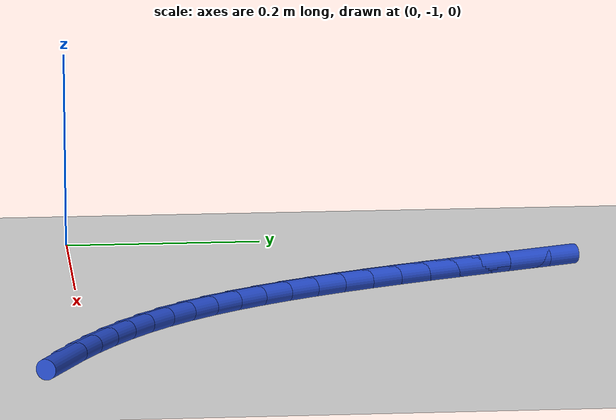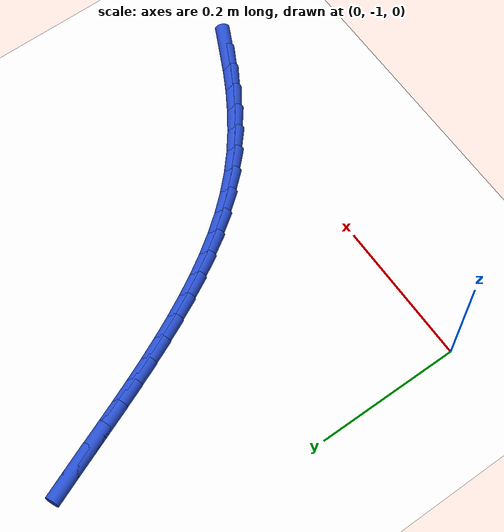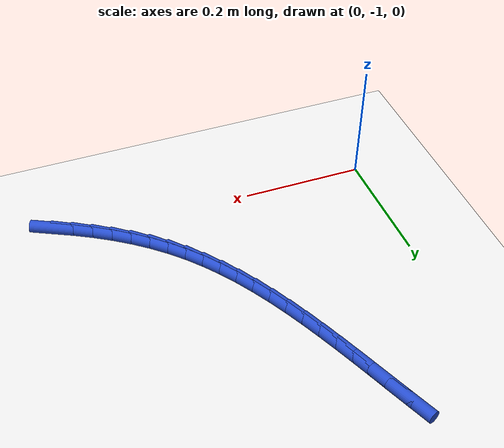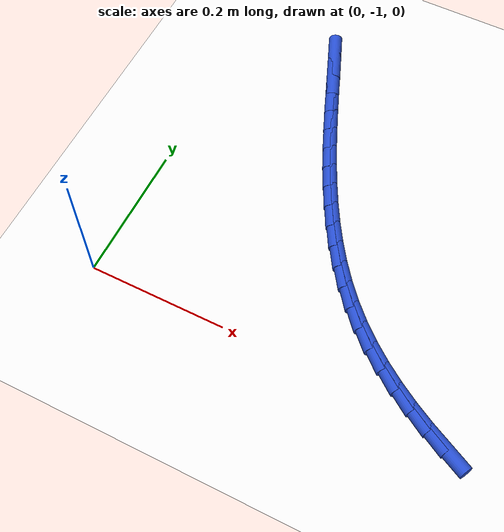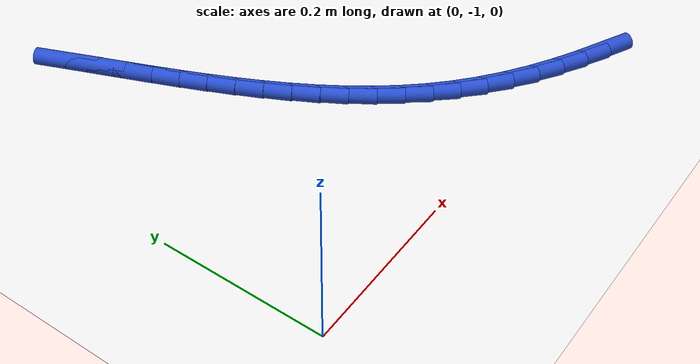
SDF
<sdf version="1.6">
 <world name="default">
  <model name="ground_plane">
   <static>1</static>
   <link name="link">
    <collision name="collision">
     <geometry><plane><normal>0 0 1</normal><size>100 100</size></plane></geometry>
     <surface><friction><ode><mu>100</mu><mu2>50</mu2></ode></friction></surface>
    </collision>
    <visual name="visual">
     <cast_shadows>0</cast_shadows>
     <geometry><plane><normal>0 0 1</normal><size>100 100</size></plane></geometry>
     <material>
      <script><uri>file://media/materials/scripts/gazebo.material</uri><name>Gazebo/WhiteGlow</name></script>
     </material>
    </visual>
   </link>
  </model>
  <model name="line">
   <link name="link_213">
    <pose>0.5237290622051641 -1.0254543604783708 0.01 0 1.57 -0.4606729219788516</pose>
    <collision name="collision">
     <geometry><cylinder><radius>0.01</radius><length>0.08</length></cylinder></geometry>
    </collision>
    <visual name="visual">
     <material>
      <script><name>Gazebo/Blue</name><uri>file://media/materials/scripts/gazebo.material</uri></script>
     </material>
     <geometry><cylinder><radius>0.01</radius><length>0.08</length></cylinder></geometry>
    </visual>
   </link>
   <link name="link_214">
    <pose>0.4943147947858749 -1.0108564374564857 0.01 0 1.57 -0.5050265197571286</pose>
    <collision name="collision">
     <geometry><cylinder><radius>0.01</radius><length>0.08</length></cylinder></geometry>
    </collision>
    <visual name="visual">
     <material>
      <script><name>Gazebo/Blue</name><uri>file://media/materials/scripts/gazebo.material</uri></script>
     </material>
     <geometry><cylinder><radius>0.01</radius><length>0.08</length></cylinder></geometry>
    </visual>
   </link>
   <link name="link_215">
    <pose>0.4657331063509196 -0.9950551315133118 0.01 0 1.57 -0.5533039846192933</pose>
    <collision name="collision">
     <geometry><cylinder><radius>0.01</radius><length>0.08</length></cylinder></geometry>
    </collision>
    <visual name="visual">
     <material>
      <script><name>Gazebo/Blue</name><uri>file://media/materials/scripts/gazebo.material</uri></script>
     </material>
     <geometry><cylinder><radius>0.01</radius><length>0.08</length></cylinder></geometry>
    </visual>
   </link>
   <link name="link_216">
    <pose>0.4381327157089801 -0.9780074631035569 0.01 0 1.57 -0.605834891844168</pose>
    <collision name="collision">
     <geometry><cylinder><radius>0.01</radius><length>0.08</length></cylinder></geometry>
    </collision>
    <visual name="visual">
     <material>
      <script><name>Gazebo/Blue</name><uri>file://media/materials/scripts/gazebo.material</uri></script>
     </material>
     <geometry><cylinder><radius>0.01</radius><length>0.08</length></cylinder></geometry>
    </visual>
   </link>
   <link name="link_217">
    <pose>0.41166234166873744 -0.9596704526819272 0.01 0 1.57 -0.6629161044674471</pose>
    <collision name="collision">
     <geometry><cylinder><radius>0.01</radius><length>0.08</length></cylinder></geometry>
    </collision>
    <visual name="visual">
     <material>
      <script><name>Gazebo/Blue</name><uri>file://media/materials/scripts/gazebo.material</uri></script>
     </material>
     <geometry><cylinder><radius>0.01</radius><length>0.08</length></cylinder></geometry>
    </visual>
   </link>
   <link name="link_218">
    <pose>0.3864707030388736 -0.9400011207031307 0.01 0 1.57 -0.7247801950234023</pose>
    <collision name="collision">
     <geometry><cylinder><radius>0.01</radius><length>0.08</length></cylinder></geometry>
    </collision>
    <visual name="visual">
     <material>
      <script><name>Gazebo/Blue</name><uri>file://media/materials/scripts/gazebo.material</uri></script>
     </material>
     <geometry><cylinder><radius>0.01</radius><length>0.08</length></cylinder></geometry>
    </visual>
   </link>
   <link name="link_219">
    <pose>0.36270651862806985 -0.9189564876218741 0.01 0 1.57 -0.7905124851231825</pose>
    <collision name="collision">
     <geometry><cylinder><radius>0.01</radius><length>0.08</length></cylinder></geometry>
    </collision>
    <visual name="visual">
     <material>
      <script><name>Gazebo/Blue</name><uri>file://media/materials/scripts/gazebo.material</uri></script>
     </material>
     <geometry><cylinder><radius>0.01</radius><length>0.08</length></cylinder></geometry>
    </visual>
   </link>
   <link name="link_220">
    <pose>0.3404891012397055 -0.8965106459658566 0.01 0 1.57 -0.8536511640707715</pose>
    <collision name="collision">
     <geometry><cylinder><radius>0.01</radius><length>0.08</length></cylinder></geometry>
    </collision>
    <visual name="visual">
     <material>
      <script><name>Gazebo/Blue</name><uri>file://media/materials/scripts/gazebo.material</uri></script>
     </material>
     <geometry><cylinder><radius>0.01</radius><length>0.08</length></cylinder></geometry>
    </visual>
   </link>
   <link name="link_221">
    <pose>0.31976077813232606 -0.8727404397282962 0.01 0 1.57 -0.9113934461783979</pose>
    <collision name="collision">
     <geometry><cylinder><radius>0.01</radius><length>0.08</length></cylinder></geometry>
    </collision>
    <visual name="visual">
     <material>
      <script><name>Gazebo/Blue</name><uri>file://media/materials/scripts/gazebo.material</uri></script>
     </material>
     <geometry><cylinder><radius>0.01</radius><length>0.08</length></cylinder></geometry>
    </visual>
   </link>
   <link name="link_222">
    <pose>0.30039797862167644 -0.8477609708867214 0.01 0 1.57 -0.9634383486966198</pose>
    <collision name="collision">
     <geometry><cylinder><radius>0.01</radius><length>0.08</length></cylinder></geometry>
    </collision>
    <visual name="visual">
     <material>
      <script><name>Gazebo/Blue</name><uri>file://media/materials/scripts/gazebo.material</uri></script>
     </material>
     <geometry><cylinder><radius>0.01</radius><length>0.08</length></cylinder></geometry>
    </visual>
   </link>
   <link name="link_223">
    <pose>0.2822770208665825 -0.8216874059523861 0.01 0 1.57 -1.009676032814293</pose>
    <collision name="collision">
     <geometry><cylinder><radius>0.01</radius><length>0.08</length></cylinder></geometry>
    </collision>
    <visual name="visual">
     <material>
      <script><name>Gazebo/Blue</name><uri>file://media/materials/scripts/gazebo.material</uri></script>
     </material>
     <geometry><cylinder><radius>0.01</radius><length>0.08</length></cylinder></geometry>
    </visual>
   </link>
   <link name="link_224">
    <pose>0.2652742230258699 -0.7946349114365429 0.01 0 1.57 -1.0501346521350534</pose>
    <collision name="collision">
     <geometry><cylinder><radius>0.01</radius><length>0.08</length></cylinder></geometry>
    </collision>
    <visual name="visual">
     <material>
      <script><name>Gazebo/Blue</name><uri>file://media/materials/scripts/gazebo.material</uri></script>
     </material>
     <geometry><cylinder><radius>0.01</radius><length>0.08</length></cylinder></geometry>
    </visual>
   </link>
   <link name="link_225">
    <pose>0.24926590325836417 -0.766718653850445 0.01 0 1.57 -1.0849327730979192</pose>
    <collision name="collision">
     <geometry><cylinder><radius>0.01</radius><length>0.08</length></cylinder></geometry>
    </collision>
    <visual name="visual">
     <material>
      <script><name>Gazebo/Blue</name><uri>file://media/materials/scripts/gazebo.material</uri></script>
     </material>
     <geometry><cylinder><radius>0.01</radius><length>0.08</length></cylinder></geometry>
    </visual>
   </link>
   <link name="link_226">
    <pose>0.23412837972289127 -0.7380537997053456 0.01 0 1.57 -1.1142384377839865</pose>
    <collision name="collision">
     <geometry><cylinder><radius>0.01</radius><length>0.08</length></cylinder></geometry>
    </collision>
    <visual name="visual">
     <material>
      <script><name>Gazebo/Blue</name><uri>file://media/materials/scripts/gazebo.material</uri></script>
     </material>
     <geometry><cylinder><radius>0.01</radius><length>0.08</length></cylinder></geometry>
    </visual>
   </link>
   <link name="link_227">
    <pose>0.21973797057827688 -0.7087555155124979 0.01 0 1.57 -1.1382366865310025</pose>
    <collision name="collision">
     <geometry><cylinder><radius>0.01</radius><length>0.08</length></cylinder></geometry>
    </collision>
    <visual name="visual">
     <material>
      <script><name>Gazebo/Blue</name><uri>file://media/materials/scripts/gazebo.material</uri></script>
     </material>
     <geometry><cylinder><radius>0.01</radius><length>0.08</length></cylinder></geometry>
    </visual>
   </link>
   <link name="link_228">
    <pose>0.2059709939833467 -0.6789389677831551 0.01 0 1.57 -1.1571053164306058</pose>
    <collision name="collision">
     <geometry><cylinder><radius>0.01</radius><length>0.08</length></cylinder></geometry>
    </collision>
    <visual name="visual">
     <material>
      <script><name>Gazebo/Blue</name><uri>file://media/materials/scripts/gazebo.material</uri></script>
     </material>
     <geometry><cylinder><radius>0.01</radius><length>0.08</length></cylinder></geometry>
    </visual>
   </link>
   <link name="link_229">
    <pose>0.1927037680969264 -0.64871932302857 0.01 0 1.57 -1.1709976436334215</pose>
    <collision name="collision">
     <geometry><cylinder><radius>0.01</radius><length>0.08</length></cylinder></geometry>
    </collision>
    <visual name="visual">
     <material>
      <script><name>Gazebo/Blue</name><uri>file://media/materials/scripts/gazebo.material</uri></script>
     </material>
     <geometry><cylinder><radius>0.01</radius><length>0.08</length></cylinder></geometry>
    </visual>
   </link>
   <link name="link_230">
    <pose>0.1798126110778418 -0.6182117477599959 0.01 0 1.57 -1.1800307436074158</pose>
    <collision name="collision">
     <geometry><cylinder><radius>0.01</radius><length>0.08</length></cylinder></geometry>
    </collision>
    <visual name="visual">
     <material>
      <script><name>Gazebo/Blue</name><uri>file://media/materials/scripts/gazebo.material</uri></script>
     </material>
     <geometry><cylinder><radius>0.01</radius><length>0.08</length></cylinder></geometry>
    </visual>
   </link>
   <link name="link_231">
    <pose>0.16717384108491853 -0.5875314084886859 0.01 0 1.57 -1.1842777584794368</pose>
    <collision name="collision">
     <geometry><cylinder><radius>0.01</radius><length>0.08</length></cylinder></geometry>
    </collision>
    <visual name="visual">
     <material>
      <script><name>Gazebo/Blue</name><uri>file://media/materials/scripts/gazebo.material</uri></script>
     </material>
     <geometry><cylinder><radius>0.01</radius><length>0.08</length></cylinder></geometry>
    </visual>
   </link>
   <link name="link_232">
    <pose>0.15466377627698244 -0.5567934717258934 0.01 0 1.57 -1.183763170032692</pose>
    <collision name="collision">
     <geometry><cylinder><radius>0.01</radius><length>0.08</length></cylinder></geometry>
    </collision>
    <visual name="visual">
     <material>
      <script><name>Gazebo/Blue</name><uri>file://media/materials/scripts/gazebo.material</uri></script>
     </material>
     <geometry><cylinder><radius>0.01</radius><length>0.08</length></cylinder></geometry>
    </visual>
   </link>
   <link name="link_233">
    <pose>0.14215873481285915 -0.5261131039828714 0.01 0 1.57 -1.1784603204265172</pose>
    <collision name="collision">
     <geometry><cylinder><radius>0.01</radius><length>0.08</length></cylinder></geometry>
    </collision>
    <visual name="visual">
     <material>
      <script><name>Gazebo/Blue</name><uri>file://media/materials/scripts/gazebo.material</uri></script>
     </material>
     <geometry><cylinder><radius>0.01</radius><length>0.08</length></cylinder></geometry>
    </visual>
   </link>
  </model>
 </world>
</sdf>
